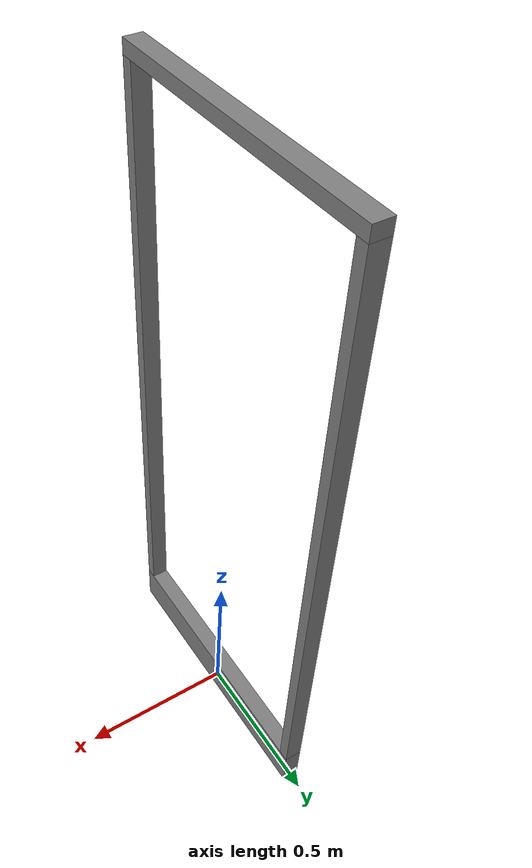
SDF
<?xml version="1.0" ?>
<sdf version="1.4">
    <model name='full_glass_wall_55_900_2090'>
      <link name='link'>
        <inertial>
          <mass>50</mass>
          <inertia>
            <ixx>1</ixx>
            <ixy>0</ixy>
            <ixz>0</ixz>
            <iyy>1</iyy>
            <iyz>0</iyz>
            <izz>1</izz>
          </inertia>
        </inertial>
        <visual name='bottom_frame'>
          <pose>0 0 0.065 0 0 0</pose>
          <geometry>
            <box>
              <size>0.055 0.9 0.13</size>
            </box>
          </geometry>
          <material>
            <!-- hsr_color/white -->
            <name>white</name>
            <ambient>1 1 1 1</ambient>
            <diffuse>0.5 0.5 0.5 1</diffuse>
            <specular>0 0 0 1</specular>
            <emissive>0 0 0 1</emissive>
            <shading>gouraud</shading>
            <receive_shadows>on</receive_shadows>
          </material>
        </visual>
        <collision name='collision_bottom_frame'>
          <pose>0 0 0.065 0 0 0</pose>
          <geometry>
            <box>
              <size>0.055 0.9 0.13</size>
            </box>
          </geometry>
          <max_contacts>10</max_contacts>
          <surface>
            <bounce/>
            <friction>
              <ode/>
            </friction>
            <contact>
              <ode/>
            </contact>
          </surface>
        </collision>
        <visual name='right_frame'>
          <pose>0 0.4325 1.090 0 0 0</pose>
          <geometry>
            <box>
              <size>0.055 0.035 1.920</size>
            </box>
          </geometry>
          <material>
            <!-- hsr_color/white -->
            <name>white</name>
            <ambient>1 1 1 1</ambient>
            <diffuse>0.5 0.5 0.5 1</diffuse>
            <specular>0 0 0 1</specular>
            <emissive>0 0 0 1</emissive>
            <shading>gouraud</shading>
            <receive_shadows>on</receive_shadows>
          </material>
        </visual>
        <collision name='collision_right_frame'>
          <pose>0 0.4325 1.090 0 0 0</pose>
          <geometry>
            <box>
              <size>0.055 0.035 1.920</size>
            </box>
          </geometry>
          <max_contacts>10</max_contacts>
          <surface>
            <bounce/>
            <friction>
              <ode/>
            </friction>
            <contact>
              <ode/>
            </contact>
          </surface>
        </collision>
        <visual name='left_frame'>
          <pose>0 -0.4325 1.090 0 0 0</pose>
          <geometry>
            <box>
              <size>0.055 0.035 1.920</size>
            </box>
          </geometry>
          <material>
            <!-- hsr_color/white -->
            <name>white</name>
            <ambient>1 1 1 1</ambient>
            <diffuse>0.5 0.5 0.5 1</diffuse>
            <specular>0 0 0 1</specular>
            <emissive>0 0 0 1</emissive>
            <shading>gouraud</shading>
            <receive_shadows>on</receive_shadows>
          </material>
        </visual>
        <collision name='collision_left_frame'>
          <pose>0 -0.4325 1.090 0 0 0</pose>
          <geometry>
            <box>
              <size>0.055 0.035 1.920</size>
            </box>
          </geometry>
          <max_contacts>10</max_contacts>
          <surface>
            <bounce/>
            <friction>
              <ode/>
            </friction>
            <contact>
              <ode/>
            </contact>
          </surface>
        </collision>
        <visual name='top_frame'>
          <pose>0 0 2.070 0 0 0</pose>
          <geometry>
            <box>
              <size>0.055 0.9 0.04</size>
            </box>
          </geometry>
          <material>
            <!-- hsr_color/white -->
            <name>white</name>
            <ambient>1 1 1 1</ambient>
            <diffuse>0.5 0.5 0.5 1</diffuse>
            <specular>0 0 0 1</specular>
            <emissive>0 0 0 1</emissive>
            <shading>gouraud</shading>
            <receive_shadows>on</receive_shadows>
          </material>
        </visual>
        <collision name='collision_top_frame'>
          <pose>0 0 2.070 0 0 0</pose>
          <geometry>
            <box>
              <size>0.055 0.9 0.04</size>
            </box>
          </geometry>
          <max_contacts>10</max_contacts>
          <surface>
            <bounce/>
            <friction>
              <ode/>
            </friction>
            <contact>
              <ode/>
            </contact>
          </surface>
        </collision>
        <velocity_decay>
          <linear>0</linear>
          <angular>0</angular>
        </velocity_decay>
        <self_collide>0</self_collide>
        <kinematic>0</kinematic>
        <gravity>1</gravity>
      </link>
      <static>1</static>
    </model>
</sdf>
